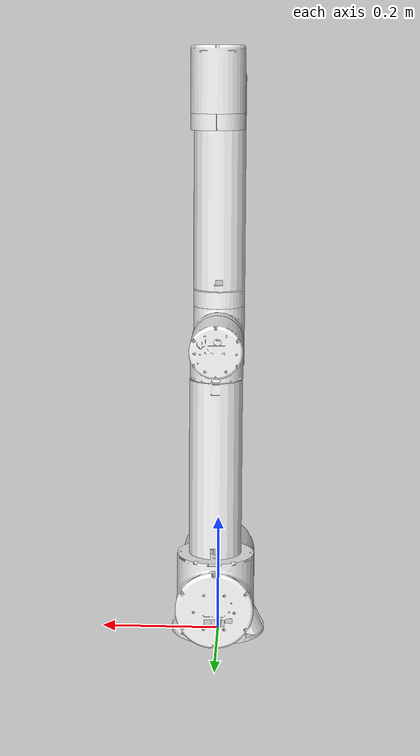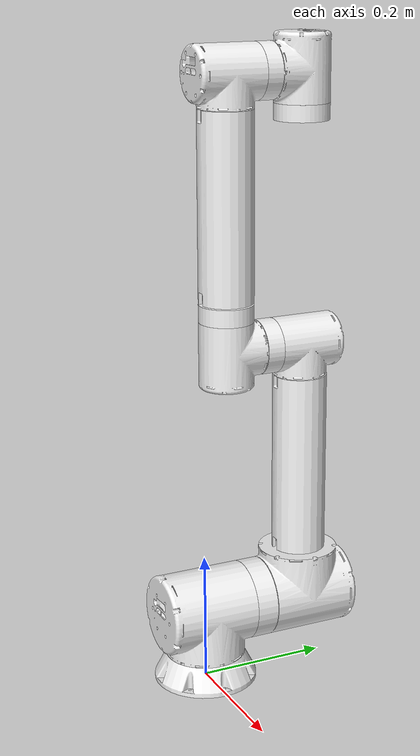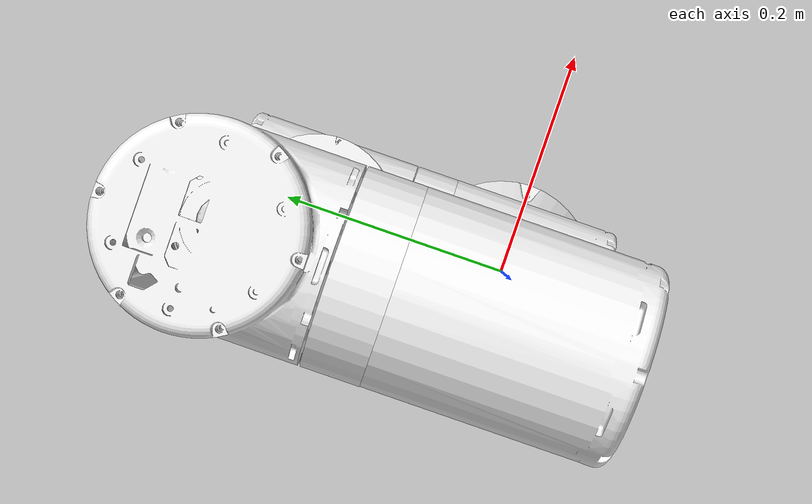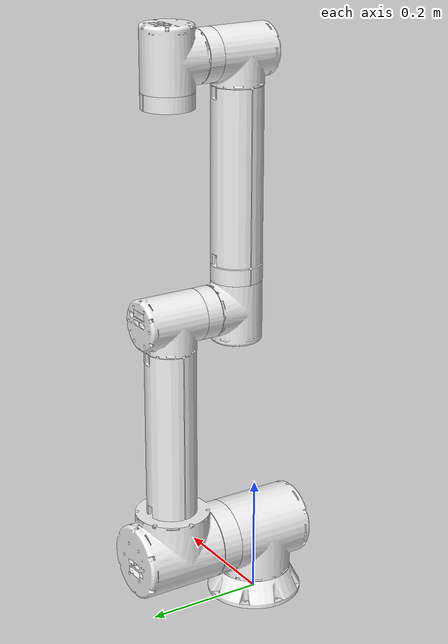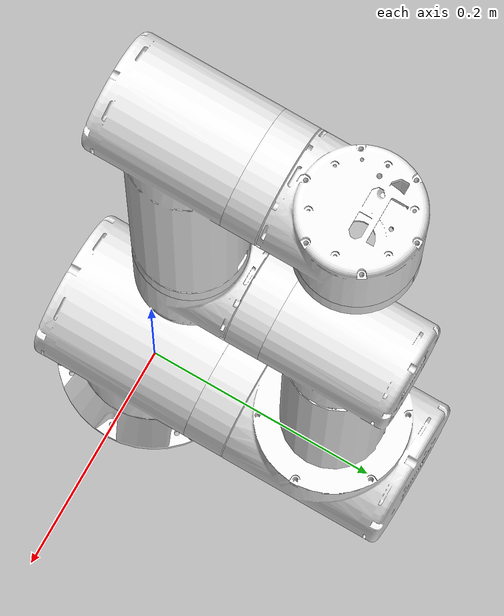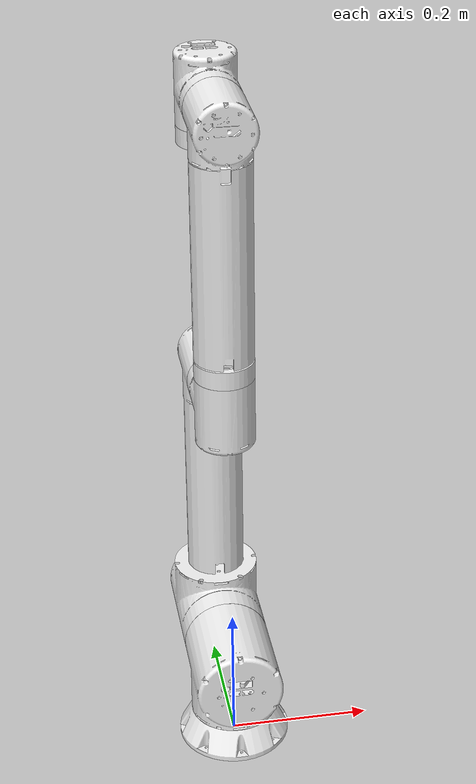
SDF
<sdf version='1.9'>
  <model name='pro_arm_6dof_900'>
    <joint name='pro_arm_base_joint' type='fixed'>
      <pose relative_to='__model__'>0 0 0 0 0 0</pose>
      <parent>world</parent>
      <child>pro_arm_base_link</child>
    </joint>
    <link name='pro_arm_base_link'>
      <pose relative_to='pro_arm_base_joint'>0 0 0 0 0 0</pose>
      <inertial>
        <pose>-1.0222e-11 0.011953 -2.0453e-11 0 0 0</pose>
        <mass>0.10000000000000001</mass>
        <inertia>
          <ixx>1.49364574483525e-05</ixx>
          <ixy>3.5429896300000001e-12</ixy>
          <ixz>-8.1927139999999995e-14</ixz>
          <iyy>1.49325665831382e-05</iyy>
          <iyz>-8.6239100000000001e-15</iyz>
          <izz>2.7023108518141601e-05</izz>
        </inertia>
      </inertial>
      <collision name='pro_arm_base_link_collision'>
        <pose>0 0 0 0 0 0</pose>
        <geometry>
          <mesh>
            <scale>1 1 1</scale>
            <uri>meshes_900/collision/pro_arm_base_link.STL</uri>
          </mesh>
        </geometry>
        <surface>
          <contact>
            <ode/>
          </contact>
          <friction>
            <ode>
              <mu>0.29999999999999999</mu>
              <mu2>0.29999999999999999</mu2>
            </ode>
          </friction>
        </surface>
      </collision>
      <visual name='pro_arm_base_link_visual'>
        <pose>0 0 0 0 0 0</pose>
        <geometry>
          <mesh>
            <scale>1 1 1</scale>
            <uri>meshes_900/visual/pro_arm_base_link.STL</uri>
          </mesh>
        </geometry>
        <material>
          <diffuse>0.941175 0.941175 0.941175 1</diffuse>
          <ambient>0.941175 0.941175 0.941175 1</ambient>
        </material>
      </visual>
    </link>
    <joint name='pro_arm_joint_1' type='revolute'>
      <pose relative_to='pro_arm_base_link'>0 0 0.042 -1.570792653576406 1.570792653605768 3.141592653589793</pose>
      <parent>pro_arm_base_link</parent>
      <child>pro_arm_link_1</child>
      <axis>
        <xyz>1 0 0</xyz>
        <limit>
          <lower>-3.1415926535897931</lower>
          <upper>3.1415926535897931</upper>
          <effort>130</effort>
          <velocity>1.5700000000000001</velocity>
        </limit>
        <dynamics>
          <damping>0.10000000000000001</damping>
          <friction>0.5</friction>
          <spring_reference>0</spring_reference>
          <spring_stiffness>0</spring_stiffness>
        </dynamics>
      </axis>
      <physics>
        <ode>
          <limit>
            <cfm>0</cfm>
            <erp>0.20000000000000001</erp>
          </limit>
        </ode>
      </physics>
    </joint>
    <link name='pro_arm_link_1'>
      <pose relative_to='pro_arm_joint_1'>0 0 0 0 0 0</pose>
      <inertial>
        <pose>-6.485469 3.6e-05 0.48748 0 0 0</pose>
        <mass>4.5</mass>
        <inertia>
          <ixx>0.0011757827156070599</ixx>
          <ixy>9.0157163991944899e-09</ixy>
          <ixz>1.41417369877024e-05</ixz>
          <iyy>0.0012730377288014899</iyy>
          <iyz>1.98305003772366e-09</iyz>
          <izz>0.0010756286628098399</izz>
        </inertia>
      </inertial>
      <collision name='pro_arm_link_1_collision'>
        <pose>0 0 0 0 0 0</pose>
        <geometry>
          <mesh>
            <scale>1 1 1</scale>
            <uri>meshes_900/collision/pro_arm_link_1.STL</uri>
          </mesh>
        </geometry>
        <surface>
          <contact>
            <ode/>
          </contact>
          <friction>
            <ode>
              <mu>0.29999999999999999</mu>
              <mu2>0.29999999999999999</mu2>
            </ode>
          </friction>
        </surface>
      </collision>
      <visual name='pro_arm_link_1_visual'>
        <pose>0 0 0 0 0 0</pose>
        <geometry>
          <mesh>
            <scale>1 1 1</scale>
            <uri>meshes_900/visual/pro_arm_link_1.STL</uri>
          </mesh>
        </geometry>
        <material>
          <diffuse>0.941175 0.941175 0.941175 1</diffuse>
          <ambient>0.941175 0.941175 0.941175 1</ambient>
        </material>
      </visual>
    </link>
    <joint name='pro_arm_joint_2' type='revolute'>
      <pose relative_to='pro_arm_link_1'>-0.075 0 -0.063583 1.172092653599064 1.570792653605768 2.270002653592138</pose>
      <parent>pro_arm_link_1</parent>
      <child>pro_arm_link_2</child>
      <axis>
        <xyz>1 0 0</xyz>
        <limit>
          <lower>-1.570796326794897</lower>
          <upper>1.570796326794897</upper>
          <effort>130</effort>
          <velocity>1.5700000000000001</velocity>
        </limit>
        <dynamics>
          <damping>0.10000000000000001</damping>
          <friction>0.5</friction>
          <spring_reference>0</spring_reference>
          <spring_stiffness>0</spring_stiffness>
        </dynamics>
      </axis>
      <physics>
        <ode>
          <limit>
            <cfm>0</cfm>
            <erp>0.20000000000000001</erp>
          </limit>
        </ode>
      </physics>
    </joint>
    <link name='pro_arm_link_2'>
      <pose relative_to='pro_arm_joint_2'>0 0 0 0 0 0</pose>
      <inertial>
        <pose>0.0826489985469987 0.115830980187337 -0.0588067754556333 0 0 0</pose>
        <mass>6</mass>
        <inertia>
          <ixx>0.0044665869776592598</ixx>
          <ixy>6.3642133012885001e-06</ixy>
          <ixz>-3.2469698364543102e-06</ixz>
          <iyy>0.0023754389914929499</iyy>
          <iyz>0.00085754001198963797</iyz>
          <izz>0.0036085135302251301</izz>
        </inertia>
      </inertial>
      <collision name='pro_arm_link_2_collision'>
        <pose>0 0 0 0 0 0</pose>
        <geometry>
          <mesh>
            <scale>1 1 1</scale>
            <uri>meshes_900/collision/pro_arm_link_2.STL</uri>
          </mesh>
        </geometry>
        <surface>
          <contact>
            <ode/>
          </contact>
          <friction>
            <ode>
              <mu>0.29999999999999999</mu>
              <mu2>0.29999999999999999</mu2>
            </ode>
          </friction>
        </surface>
      </collision>
      <visual name='pro_arm_link_2_visual'>
        <pose>0 0 0 0 0 0</pose>
        <geometry>
          <mesh>
            <scale>1 1 1</scale>
            <uri>meshes_900/visual/pro_arm_link_2.STL</uri>
          </mesh>
        </geometry>
        <material>
          <diffuse>0.941175 0.941175 0.941175 1</diffuse>
          <ambient>0.941175 0.941175 0.941175 1</ambient>
        </material>
      </visual>
    </link>
    <joint name='pro_arm_joint_3' type='revolute'>
      <pose relative_to='pro_arm_link_2'>0 0.36722 -0.18789 0.3124799999999999 0 0</pose>
      <parent>pro_arm_link_2</parent>
      <child>pro_arm_link_3</child>
      <axis>
        <xyz>1 0 0</xyz>
        <limit>
          <lower>-2.0943951023931948</lower>
          <upper>2.0943951023931948</upper>
          <effort>54</effort>
          <velocity>0.78539999999999999</velocity>
        </limit>
        <dynamics>
          <damping>0.10000000000000001</damping>
          <friction>0.5</friction>
          <spring_reference>0</spring_reference>
          <spring_stiffness>0</spring_stiffness>
        </dynamics>
      </axis>
      <physics>
        <ode>
          <limit>
            <cfm>0</cfm>
            <erp>0.20000000000000001</erp>
          </limit>
        </ode>
      </physics>
    </joint>
    <link name='pro_arm_link_3'>
      <pose relative_to='pro_arm_joint_3'>0 0 0 0 0 0</pose>
      <inertial>
        <pose>0.00457820497425972 -0.0013810445300742 0.00139637649876129 0 0 0</pose>
        <mass>1.52</mass>
        <inertia>
          <ixx>0.00023312085297372799</ixx>
          <ixy>-9.9105717103588105e-07</ixy>
          <ixz>9.2819911026509899e-07</ixz>
          <iyy>0.00018327742188443399</iyy>
          <iyz>-8.4324713389597698e-06</iyz>
          <izz>0.00018278514588324001</izz>
        </inertia>
      </inertial>
      <collision name='pro_arm_link_3_collision'>
        <pose>0 0 0 0 0 0</pose>
        <geometry>
          <mesh>
            <scale>1 1 1</scale>
            <uri>meshes_900/collision/pro_arm_link_3.STL</uri>
          </mesh>
        </geometry>
        <surface>
          <contact>
            <ode/>
          </contact>
          <friction>
            <ode>
              <mu>0.29999999999999999</mu>
              <mu2>0.29999999999999999</mu2>
            </ode>
          </friction>
        </surface>
      </collision>
      <visual name='pro_arm_link_3_visual'>
        <pose>0 0 0 0 0 0</pose>
        <geometry>
          <mesh>
            <scale>1 1 1</scale>
            <uri>meshes_900/visual/pro_arm_link_3.STL</uri>
          </mesh>
        </geometry>
        <material>
          <diffuse>0.941175 0.941175 0.941175 1</diffuse>
          <ambient>0.941175 0.941175 0.941175 1</ambient>
        </material>
      </visual>
    </link>
    <joint name='pro_arm_joint_4' type='revolute'>
      <pose relative_to='pro_arm_link_3'>-0.024583 0.0026942 -0.0026942 0 0 0</pose>
      <parent>pro_arm_link_3</parent>
      <child>pro_arm_link_4</child>
      <axis>
        <xyz>0 0.70711 -0.70711</xyz>
        <limit>
          <lower>-3.1415926535897931</lower>
          <upper>3.1415926535897931</upper>
          <effort>54</effort>
          <velocity>0.78539999999999999</velocity>
        </limit>
        <dynamics>
          <damping>0.10000000000000001</damping>
          <friction>0.5</friction>
          <spring_reference>0</spring_reference>
          <spring_stiffness>0</spring_stiffness>
        </dynamics>
      </axis>
      <physics>
        <ode>
          <limit>
            <cfm>0</cfm>
            <erp>0.20000000000000001</erp>
          </limit>
        </ode>
      </physics>
    </joint>
    <link name='pro_arm_link_4'>
      <pose relative_to='pro_arm_joint_4'>0 0 0 0 0 0</pose>
      <inertial>
        <pose>9.60265339091521e-05 0.165003016703847 -0.164764525095486 0 0 0</pose>
        <mass>1.52</mass>
        <inertia>
          <ixx>0.0030029962461123301</ixx>
          <ixy>9.13978026360818e-07</ixy>
          <ixz>-8.77916805572091e-07</ixz>
          <iyy>0.0019034991115768</iyy>
          <iyz>0.0010789570297446299</iyz>
          <izz>0.00190344015518851</izz>
        </inertia>
      </inertial>
      <collision name='pro_arm_link_4_collision'>
        <pose>0 0 0 0 0 0</pose>
        <geometry>
          <mesh>
            <scale>1 1 1</scale>
            <uri>meshes_900/collision/pro_arm_link_4.STL</uri>
          </mesh>
        </geometry>
        <surface>
          <contact>
            <ode/>
          </contact>
          <friction>
            <ode>
              <mu>0.29999999999999999</mu>
              <mu2>0.29999999999999999</mu2>
            </ode>
          </friction>
        </surface>
      </collision>
      <visual name='pro_arm_link_4_visual'>
        <pose>0 0 0 0 0 0</pose>
        <geometry>
          <mesh>
            <scale>1 1 1</scale>
            <uri>meshes_900/visual/pro_arm_link_4.STL</uri>
          </mesh>
        </geometry>
        <material>
          <diffuse>0.941175 0.941175 0.941175 1</diffuse>
          <ambient>0.941175 0.941175 0.941175 1</ambient>
        </material>
      </visual>
    </link>
    <joint name='pro_arm_joint_5' type='revolute'>
      <pose relative_to='pro_arm_link_4'>0.048 0.28828 -0.28828 -0.7854000000000001 0 0</pose>
      <parent>pro_arm_link_4</parent>
      <child>pro_arm_link_5</child>
      <axis>
        <xyz>1 0 0</xyz>
        <limit>
          <lower>-3.1415926535897931</lower>
          <upper>3.1415926535897931</upper>
          <effort>19</effort>
          <velocity>0.78539999999999999</velocity>
        </limit>
        <dynamics>
          <damping>0.10000000000000001</damping>
          <friction>0.5</friction>
          <spring_reference>0</spring_reference>
          <spring_stiffness>0</spring_stiffness>
        </dynamics>
      </axis>
      <physics>
        <ode>
          <limit>
            <cfm>0</cfm>
            <erp>0.20000000000000001</erp>
          </limit>
        </ode>
      </physics>
    </joint>
    <link name='pro_arm_link_5'>
      <pose relative_to='pro_arm_joint_5'>0 0 0 0 0 0</pose>
      <inertial>
        <pose>0.0449928461965346 -0.000256793176622971 4.79955057997106e-05 0 0 0</pose>
        <mass>1.1000000000000001</mass>
        <inertia>
          <ixx>0.00024826391825770401</ixx>
          <ixy>-1.26708446953254e-06</ixy>
          <ixz>2.83208766882495e-08</ixz>
          <iyy>0.000198829511118026</iyy>
          <iyz>1.04647409519695e-07</iyz>
          <izz>0.000183426745229536</izz>
        </inertia>
      </inertial>
      <collision name='pro_arm_link_5_collision'>
        <pose>0 0 0 0 0 0</pose>
        <geometry>
          <mesh>
            <scale>1 1 1</scale>
            <uri>meshes_900/collision/pro_arm_link_5.STL</uri>
          </mesh>
        </geometry>
        <surface>
          <contact>
            <ode/>
          </contact>
          <friction>
            <ode>
              <mu>0.29999999999999999</mu>
              <mu2>0.29999999999999999</mu2>
            </ode>
          </friction>
        </surface>
      </collision>
      <visual name='pro_arm_link_5_visual'>
        <pose>0 0 0 0 0 0</pose>
        <geometry>
          <mesh>
            <scale>1 1 1</scale>
            <uri>meshes_900/visual/pro_arm_link_5.STL</uri>
          </mesh>
        </geometry>
        <material>
          <diffuse>0.941175 0.941175 0.941175 1</diffuse>
          <ambient>0.941175 0.941175 0.941175 1</ambient>
        </material>
      </visual>
    </link>
    <joint name='pro_arm_joint_6' type='revolute'>
      <pose relative_to='pro_arm_link_5'>0.076 -0.048 0 -3.141585307179587 -1.545400000000002 -3.141585307179587</pose>
      <parent>pro_arm_link_5</parent>
      <child>pro_arm_link_6</child>
      <axis>
        <xyz>0 1 0</xyz>
        <limit>
          <lower>-3.1415926535897931</lower>
          <upper>3.1415926535897931</upper>
          <effort>19</effort>
          <velocity>0.78539999999999999</velocity>
        </limit>
        <dynamics>
          <damping>0.10000000000000001</damping>
          <friction>0.5</friction>
          <spring_reference>0</spring_reference>
          <spring_stiffness>0</spring_stiffness>
        </dynamics>
      </axis>
      <physics>
        <ode>
          <limit>
            <cfm>0</cfm>
            <erp>0.20000000000000001</erp>
          </limit>
        </ode>
      </physics>
    </joint>
    <link name='pro_arm_link_6'>
      <pose relative_to='pro_arm_joint_6'>0 0 0 0 0 0</pose>
      <inertial>
        <pose>3.83807569059869e-15 -0.0125000000000002 0.000195763682872163 0 0 0</pose>
        <mass>0.080000000000000002</mass>
        <inertia>
          <ixx>5.4307489272127899e-05</ixx>
          <ixy>-8.4166960395035794e-21</ixy>
          <ixz>1.35169517722841e-17</ixz>
          <iyy>0.000100760354633415</iyy>
          <iyz>1.3098385758206299e-21</iyz>
          <izz>5.4873397232815998e-05</izz>
        </inertia>
      </inertial>
      <collision name='pro_arm_link_6_collision'>
        <pose>0 0 0 0 0 0</pose>
        <geometry>
          <mesh>
            <scale>1 1 1</scale>
            <uri>meshes_900/collision/pro_arm_link_6.STL</uri>
          </mesh>
        </geometry>
        <surface>
          <contact>
            <ode/>
          </contact>
          <friction>
            <ode>
              <mu>0.29999999999999999</mu>
              <mu2>0.29999999999999999</mu2>
            </ode>
          </friction>
        </surface>
      </collision>
      <visual name='pro_arm_link_6_visual'>
        <pose>0 0 0 0 0 0</pose>
        <geometry>
          <mesh>
            <scale>1 1 1</scale>
            <uri>meshes_900/visual/pro_arm_link_6.STL</uri>
          </mesh>
        </geometry>
        <material>
          <diffuse>0.941175 0.941175 0.941175 1</diffuse>
          <ambient>0.941175 0.941175 0.941175 1</ambient>
        </material>
      </visual>
    </link>
    <plugin name='ign_ros2_control::IgnitionROS2ControlPlugin' filename='ign_ros2_control-system'>
      <parameters>/home/geraldinebc/Documents/GIT/local_pro_tests/install/pro_arm_moveit/share/pro_arm_moveit/config/controllers_6dof.yaml</parameters>
    </plugin>
    <frame name='pro_arm_ee_virtual_joint' attached_to='pro_arm_link_6'>
      <pose>0 -0.025 0 0 -0 0</pose>
    </frame>
    <frame name='pro_arm_ee' attached_to='pro_arm_ee_virtual_joint'/>
  </model>
</sdf>
